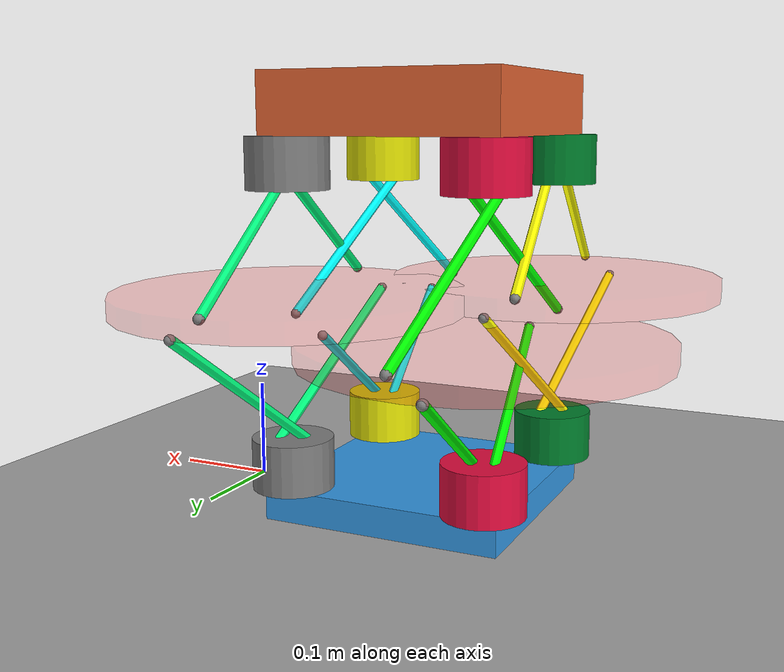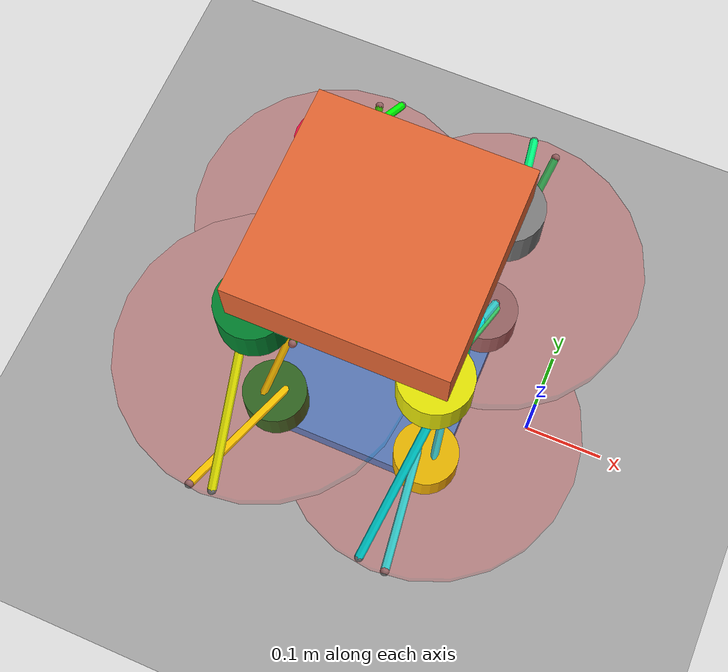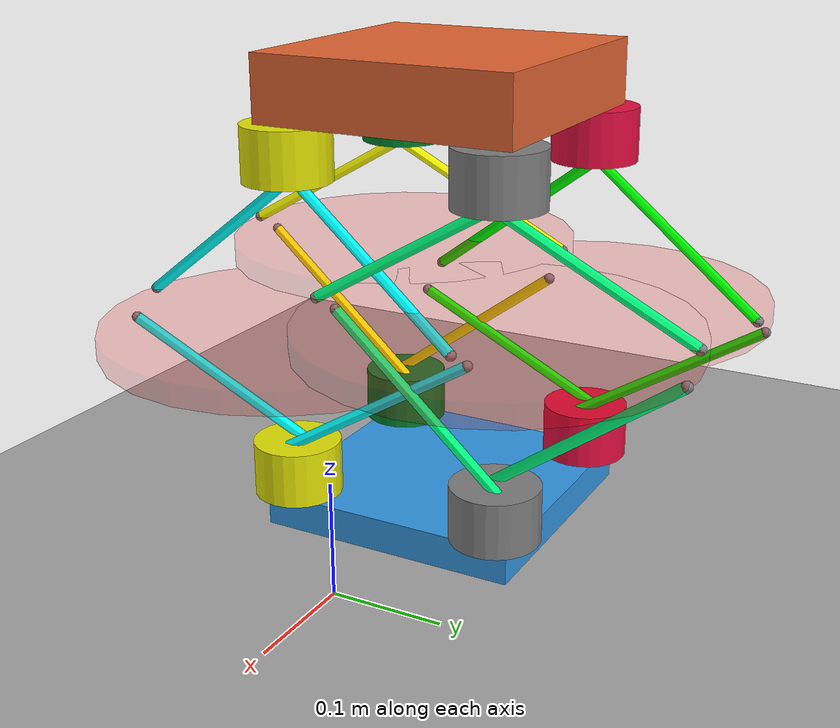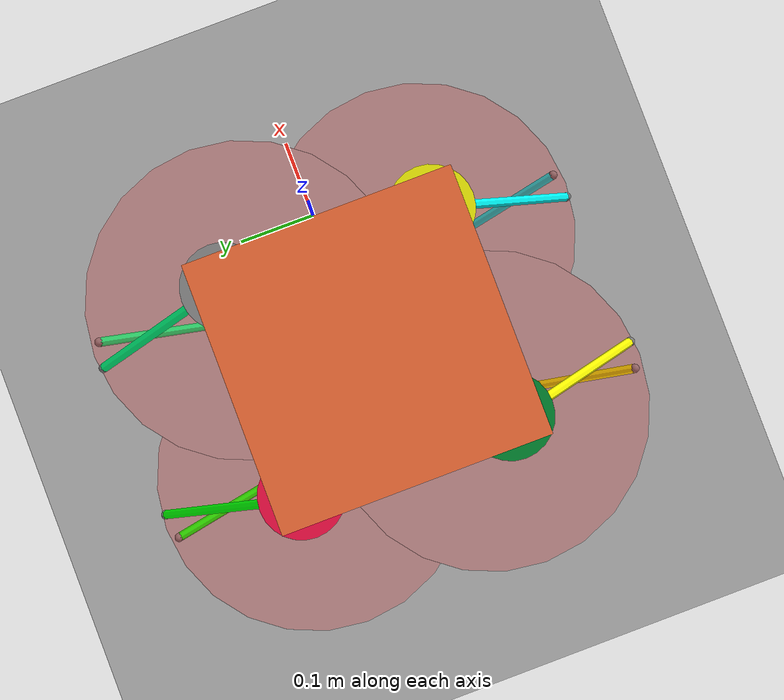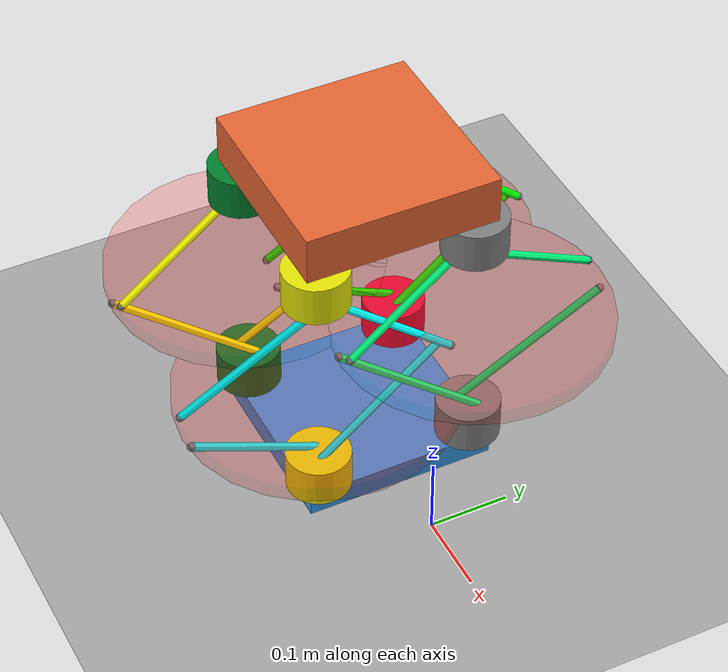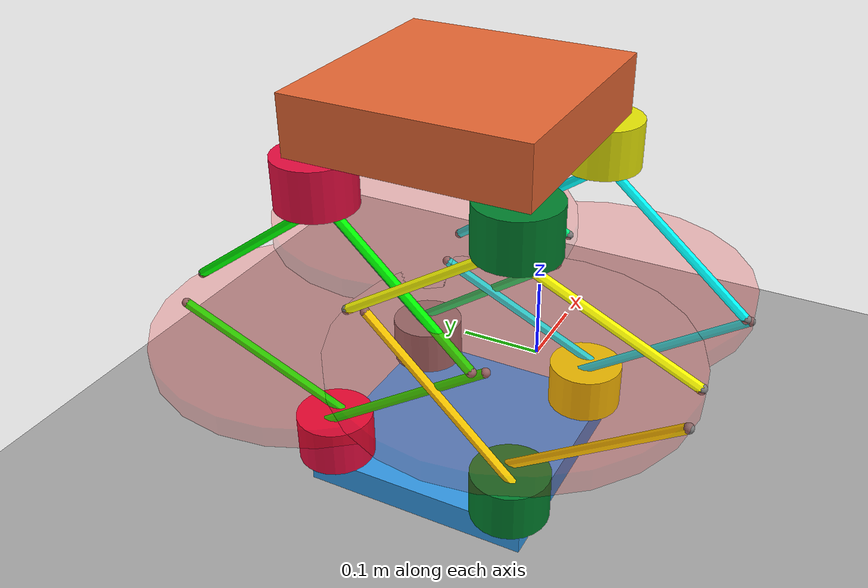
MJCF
<mujoco model="verticalOrientation">
    <compiler angle="radian" />
    <option timestep="0.001" actuatorgroupdisable="0 1 2" gravity="0 0 0"/>

    <asset>
        <texture name="grid" type="2d" builtin="checker" width="300" height="300"
             rgb1="0.8 0.8 0.8" rgb2="0.5 0.5 0.5" mark="edge" markrgb="0.2 0.2 0.2"/>
        <material name="gridmat" texture="grid" texrepeat="5 5" reflectance="0"/>
    </asset>

    <worldbody>
        <light name="light_front" pos="0 -5 0" dir="0 1 0" directional="true" diffuse=".5 .5 .5"/>
        <light name="light_back" pos="0 5 0" dir="0 -1 0" directional="true" diffuse=".5 .5 .5"/>
        <light name="light_right" pos="5 0 0" dir="-1 0 0" directional="true" diffuse=".5 .5 .5"/>
        <light name="light_left" pos="-5 0 0" dir="1 0 0" directional="true" diffuse=".5 .5 .5"/>

        <geom name="floor" type="plane" size="10 10 0.1" material="gridmat"/>
       <!-- Top Level Container -->

            <!-- Block A -->
            <body name="block_a" pos="-0.2 0 0" euler="0 -1.57 0">
                <inertial pos="0.04 0 0" mass="2.4" diaginertia="0.001 0.01 0.01"/>
                <geom type="box" size="0.03 0.12 0.12" mass="2.4" friction="0.2 0.02 0.01" rgba="0.2 0.6 0.9 1"/>

                <!-- Cylinder 1A -->
                <body name="cylinder1a" pos="0.03 0.10 0.10">
                    <inertial pos="0.035 0 0" mass="0.1" diaginertia="0.0001 0.0002 0.0002"/>
                    <joint name="cw_cont_1a_top" type="hinge" axis="1 0 0" limited="true" range="0 3.14"/>
                    <geom name="cylinder1a_con" type="cylinder" fromto="0 0 0 0.05 0 0" size="0.04" rgba="0.9 0.05 0.25 1" />

                    <site name="siteM1a1" pos="0.03 0.03 0.015"/>
                    <site name="siteM1a2" pos="0.03 -0.03 -0.015"/>
                </body>

                <!-- Disc 1B -->
                <body name="disc1b" pos="0.175 0.10 0.10">
                    <inertial pos="0.025 0 0" mass="0.1" diaginertia="0.0001 0.000225 0.000225"/>
                    <geom name="disc1b_con" type="cylinder" fromto="0 0 0 0.02 0 0" size="0.17"  rgba="1 0 0 0.1" contype="0" conaffinity="0"/>
                    <joint name="disc1b_hinge" type="hinge" axis="1 0 0"/>
                    <joint name="disc1b_slidez" type="slide" axis="0 0 1"/>
                    <joint name="disc1b_slidey" type="slide" axis="0 1 0"/>
                    <site name="siteM1b1" pos="0 -0.165 -0.015"/>
                    <site name="siteM1b2" pos="0 0.165 0.015"/>

                    <site name="siteM1b3" pos="0.02 -0.165 0.015"/>
                    <site name="siteM1b4" pos="0.02 0.165 -0.015"/>
                </body>

                <!-- Cylinder 2C-->
                <body name="cylinder2c" pos="0.03 -0.10 0.10">
                    <inertial pos="0.035 0 0" mass="0.1" diaginertia="0.0001 0.0002 0.0002"/>
                    <joint name="cw_ext_2c_top" type="hinge" axis="1 0 0"/>
                    <geom name="cylinder2c_con" type="cylinder" fromto="0 0 0 0.05 0 0" size="0.04" rgba="0.0 0.5 0.175 1"/>

                    <site name="siteM2c1" pos="0.03 0.03 -0.015"/>
                    <site name="siteM2c2" pos="0.03 -0.03 0.015"/>
                </body>

                <!-- Cylinder 3A -->
                <body name="cylinder3a" pos="0.03 -0.10 -0.10">
                    <inertial pos="0.035 0 0" mass="0.1" diaginertia="0.0001 0.0002 0.0002"/>
                    <joint name="cw_cont_3a_btm" type="hinge" axis="1 0 0" limited="true" range="0 3.14"/>
                    <geom name="cylinder3a_con" type="cylinder" fromto="0 0 0 0.05 0 0" size="0.04" rgba="0.9 0.9 0.02 1"/>

                    <site name="siteM3a1" pos="0.03 0.03 0.015"/>
                    <site name="siteM3a2" pos="0.03 -0.03 -0.015"/>

                </body>

                <!-- Disc 3B-->
                <body name="disc3b" pos="0.175 -0.10 -0.10">
                    <inertial pos="0.025 0 0" mass="0.1" diaginertia="0.0001 0.000225 0.000225"/>
                    <geom name="disc3b_con" type="cylinder" fromto="0 0 0 0.02 0 0" size="0.17"  rgba="1 0 0 0.1" contype="0" conaffinity="0"/>
                    <joint name="disc3b_hinge" type="hinge" axis="1 0 0"/>
                    <joint name="disc3b_slidez" type="slide" axis="0 0 1"/>
                    <joint name="disc3b_slidey" type="slide" axis="0 1 0"/>
                    <site name="siteM3b1" pos="0.0 -0.165 -0.015"/>
                    <site name="siteM3b2" pos="0.0 0.165 0.015"/>

                    <site name="siteM3b3" pos="0.02 -0.165 0.015"/>
                    <site name="siteM3b4" pos="0.02 0.165 -0.015"/>
                </body>

                <!-- Cylinder 4C-->
                <body name="cylinder4c" pos="0.03 0.10 -0.10">
                    <inertial pos="0.035 0 0" mass="0.1" diaginertia="0.0001 0.0002 0.0002"/>
                    <joint name="cw_ext_4c_btm" type="hinge" axis="1 0 0"/>
                    <geom name="cylinder4c_con" type="cylinder" fromto="0 0 0 0.05 0 0" size="0.04" />
                    <site name="siteM4c1" pos="0.03 0.03 -0.015"/>
                    <site name="siteM4c2" pos="0.03 -0.03 0.015"/>
                </body>

            </body>

            <!-- Block B -->
            <body name="block_b" pos="-0.2 0 0.4" euler="0 -1.57 0">
                <freejoint/>
                <inertial pos="-0.04 0 0" mass="2.4" diaginertia="0.001 0.01 0.01"/>
                <geom type="box" size="0.03 0.12 0.12" mass="2.4" friction="0.2 0.02 0.01" rgba="0.9 0.4 0.2 1"/>

                <!-- Cylinder 1C -->
                <body name="cylinder1c" pos="-0.03 0.10 0.10">
                    <inertial pos="-0.035 0 0" mass="0.1" diaginertia="0.0001 0.0002 0.0002"/>
                    <joint name="cw_ext_1c_top" type="hinge" axis="1 0 0"/>
                    <geom name="cylinder1c_con" type="cylinder" fromto="0 0 0 -0.05 0 0" size="0.04" rgba="0.9 0.05 0.25 1"/>

                    <site name="siteM1c1" pos="-0.03 0.03 -0.015"/>
                    <site name="siteM1c2" pos="-0.03 -0.03 0.015"/>
                </body>

                <!-- Cylinder 3C-->
                <body name="cylinder3c" pos="-0.03 -0.10 -0.10">
                    <inertial pos="-0.035 0 0" mass="0.1" diaginertia="0.0001 0.0002 0.0002"/>
                    <joint name="cw_ext_3c_btm" type="hinge" axis="1 0 0"/>
                    <geom name="cylinder3c_con" type="cylinder" fromto="0 0 0 -0.05 0 0" size="0.04" rgba="0.9 0.9 0.02 1"/>

                    <site name="siteM3c1" pos="-0.03 0.03 -0.015"/>
                    <site name="siteM3c2" pos="-0.03 -0.03 0.015"/>
                </body>

                <!-- Cylinder 2A -->
                <body name="cylinder2a" pos="-0.03 -0.10 0.10">
                    <inertial pos="-0.035 0 0" mass="0.1" diaginertia="0.0001 0.0002 0.0002"/>
                    <joint name="cw_cont_2a_top" type="hinge" axis="1 0 0" limited="true" range="0 3.14"/>
                    <geom name="cylinder2a_con" type="cylinder" fromto="0 0 0 -0.05 0 0" size="0.04" rgba="0.0 0.5 0.175 1"/>

                    <site name="siteM2a1" pos="-0.03 0.03 0.015"/>
                    <site name="siteM2a2" pos="-0.03 -0.03 -0.015"/>
                </body>

                <!-- Disc 2B -->
                <body name="disc2b" pos="-0.175 -0.10 0.10">
                    <inertial pos="-0.025 0 0" mass="0.1" diaginertia="0.0001 0.000225 0.000225"/>
                    <geom name="disc2b_con" type="cylinder" fromto="0 0 0 -0.02 0 0" size="0.17"  rgba="1 0 0 0.1" contype="0" conaffinity="0"/>
                    <joint name="disc2b_hinge" type="hinge" axis="1 0 0"/>
                    <joint name="disc2b_slidez" type="slide" axis="0 0 1"/>
                    <joint name="disc2b_slidey" type="slide" axis="0 1 0"/>
                    <site name="siteM2b1" pos="0 -0.165 -0.015"/>
                    <site name="siteM2b2" pos="0 0.165 0.015"/>

                    <site name="siteM2b3" pos="-0.02 -0.165 0.015"/>
                    <site name="siteM2b4" pos="-0.02 0.165 -0.015"/>
                </body>

                <!-- Cylinder4A -->
                <body name="cylinder4a" pos="-0.03 0.10 -0.10">
                    <inertial pos="-0.035 0 0" mass="0.1" diaginertia="0.0001 0.0002 0.0002"/>
                    <joint name="cw_cont_4a_btm" type="hinge" axis="1 0 0" limited="true" range="0 3.14" />
                    <geom name="cylinder4a_con" type="cylinder" fromto="0 0 0 -0.05 0 0" size="0.04" />

                    <site name="siteM4a1" pos="-0.03 0.03 0.015"/>
                    <site name="siteM4a2" pos="-0.03 -0.03 -0.015"/>
                </body>

                <!-- Disc4B -->
                <body name="disc4b" pos="-0.175 0.10 -0.10">
                    <inertial pos="-0.025 0 0" mass="0.1" diaginertia="0.0001 0.000225 0.000225"/>
                    <geom name="disc4b_con" type="cylinder" fromto="0 0 0 -0.02 0 0" size="0.17"  rgba="1 0 0 0.1" contype="0" conaffinity="0"/>
                    <joint name="disc4b_hinge" type="hinge" axis="1 0 0"/>
                    <joint name="disc4b_slidez" type="slide" axis="0 0 1"/>
                    <joint name="disc4b_slidey" type="slide" axis="0 1 0"/>

                    <site name="siteM4b1" pos="0 -0.165 -0.015"/>
                    <site name="siteM4b2" pos="0 0.165 0.015"/>

                    <site name="siteM4b3" pos="-0.02 -0.165 0.015"/>
                    <site name="siteM4b4" pos="-0.02 0.165 -0.015"/>
                </body>

            </body>

    </worldbody>

    <equality>
        <joint name="lock_disc1b" joint1="disc1b_hinge" />
        <joint name="lock_disc2b" joint1="disc2b_hinge" />
        <joint name="lock_disc3b" joint1="disc3b_hinge" />
        <joint name="lock_disc4b" joint1="disc4b_hinge" />
    </equality>

    <contact>
        <!-- For friction, making the first 2 values different results in anisotropic tangential friction, last 2 results in anisotropic rolling friction -->
        <pair name="cylinder3a_ground" geom1="cylinder3a_con" geom2="floor" condim="3" friction="1 0.1 0.0005 0.001 0.0001"/>
        <pair name="cylinder3c_ground" geom1="cylinder3c_con" geom2="floor" condim="3" friction="1 0.1 0.0005 0.001 0.0001"/>
        <pair name="cylinder4a_ground" geom1="cylinder4a_con" geom2="floor" condim="3" friction="1 0.1 0.0005 0.001 0.0001"/>
        <pair name="cylinder4c_ground" geom1="cylinder4c_con" geom2="floor" condim="3" friction="1 0.1 0.0005 0.001 0.0001"/>
    </contact>

    <actuator>
        <motor name="spring1a_torque" group="0" joint="cw_cont_1a_top" gear="0.05" ctrlrange="-5 5"/>
        <motor name="spring2a_torque" group="0" joint="cw_cont_2a_top" gear="0.05" ctrlrange="-5 5"/>
        <motor name="spring3a_torque" group="0" joint="cw_cont_3a_btm" gear="0.05" ctrlrange="-5 5"/>
        <motor name="spring4a_torque" group="0" joint="cw_cont_4a_btm" gear="0.05" ctrlrange="-5 5"/>

        <motor name="spring1c_torque" group="0" joint="cw_ext_1c_top" gear="0.05" ctrlrange="-5 5"/>
        <motor name="spring2c_torque" group="0" joint="cw_ext_2c_top" gear="0.05" ctrlrange="-5 5"/>
        <motor name="spring3c_torque" group="0" joint="cw_ext_3c_btm" gear="0.05" ctrlrange="-5 5"/>
        <motor name="spring4c_torque" group="0" joint="cw_ext_4c_btm" gear="0.05" ctrlrange="-5 5"/>
    </actuator>
    <actuator>
        <position name="spring1a_motor" group="1" joint="cw_cont_1a_top" kp="1" ctrlrange="0 3.14"/>
        <position name="spring2a_motor" group="1" joint="cw_cont_2a_top" kp="1" ctrlrange="0 3.14"/>
        <position name="spring3a_motor" group="1" joint="cw_cont_3a_btm" kp="1" ctrlrange="0 3.14"/>
        <position name="spring4a_motor" group="1" joint="cw_cont_4a_btm" kp="1" ctrlrange="0 3.14"/>

        <position name="spring1c_motor" group="1" joint="cw_ext_1c_top" kp="1" ctrlrange="-3.14 0"/>
        <position name="spring2c_motor" group="1" joint="cw_ext_2c_top" kp="1" ctrlrange="-3.14 0"/>
        <position name="spring3c_motor" group="1" joint="cw_ext_3c_btm" kp="1" ctrlrange="-3.14 0"/>
        <position name="spring4c_motor" group="1" joint="cw_ext_4c_btm" kp="1" ctrlrange="-3.14 0"/>
    </actuator>
    <actuator>
        <velocity name="spring1a_vel" group="2" joint="cw_cont_1a_top" kv="0.1" ctrlrange="-6.28 6.28"/>
        <velocity name="spring2a_vel" group="2" joint="cw_cont_2a_top" kv="0.1" ctrlrange="-6.28 6.28"/>
        <velocity name="spring3a_vel" group="2" joint="cw_cont_3a_btm" kv="0.1" ctrlrange="-6.28 6.28"/>
        <velocity name="spring4a_vel" group="2" joint="cw_cont_4a_btm" kv="0.1" ctrlrange="-6.28 6.28"/>

        <velocity name="spring1c_vel" group="2" joint="cw_ext_1c_top" kv="0.1" ctrlrange="-6.28 6.28"/>
        <velocity name="spring2c_vel" group="2" joint="cw_ext_2c_top" kv="0.1" ctrlrange="-6.28 6.28"/>
        <velocity name="spring3c_vel" group="2" joint="cw_ext_3c_btm" kv="0.1" ctrlrange="-6.28 6.28"/>
        <velocity name="spring4c_vel" group="2" joint="cw_ext_4c_btm" kv="0.1" ctrlrange="-6.28 6.28"/>
    </actuator>

    <tendon>
        <spatial name="inter1a1" width="0.005" rgba="0 1 0 1" stiffness="3000" damping="15">
            <site site="siteM1a1"/>
            <site site="siteM1b1"/>
        </spatial>
        <spatial name="inter1a2" width="0.005" rgba="0 1 0 1" stiffness="3000" damping="15">
            <site site="siteM1a2"/>
            <site site="siteM1b2"/>
        </spatial>
        <spatial name="inter1b1" width="0.005" rgba="0 1 0 1" stiffness="3000" damping="15">
            <site site="siteM1b3"/>
            <site site="siteM1c1"/>
        </spatial>
            <spatial name="inter1b2" width="0.005" rgba="0 1 0 1" stiffness="3000" damping="15">
            <site site="siteM1b4"/>
            <site site="siteM1c2"/>
        </spatial>

        <spatial name="inter2a1" width="0.005" rgba="1 1 0 1" stiffness="3000" damping="15">
            <site site="siteM2a1"/>
            <site site="siteM2b1"/>
        </spatial>
        <spatial name="inter2a2" width="0.005" rgba="1 1 0 1" stiffness="3000" damping="15">
            <site site="siteM2a2"/>
            <site site="siteM2b2"/>
        </spatial>
        <spatial name="inter2b1" width="0.005" rgba="1 1 0 1" stiffness="3000" damping="15">
            <site site="siteM2b3"/>
            <site site="siteM2c1"/>
        </spatial>
        <spatial name="inter2b2" width="0.005" rgba="1 1 0 1" stiffness="3000" damping="15">
            <site site="siteM2b4"/>
            <site site="siteM2c2"/>
        </spatial>

        <spatial name="inter3a1" width="0.005" rgba="0 1 1 1" stiffness="3000" damping="15">
            <site site="siteM3a1"/>
            <site site="siteM3b1"/>
        </spatial>
        <spatial name="inter3a2" width="0.005" rgba="0 1 1 1" stiffness="3000" damping="15">
            <site site="siteM3a2"/>
            <site site="siteM3b2"/>
        </spatial>
        <spatial name="inter3b1" width="0.005" rgba="0 1 1 1" stiffness="3000" damping="15">
            <site site="siteM3b3"/>
            <site site="siteM3c1"/>
        </spatial>
        <spatial name="inter3b2" width="0.005" rgba="0 1 1 1" stiffness="3000" damping="15">
            <site site="siteM3b4"/>
            <site site="siteM3c2"/>
        </spatial>

        <spatial name="inter4a1" width="0.005" rgba="0 1 0.5 1" stiffness="3000" damping="15">
            <site site="siteM4a1"/>
            <site site="siteM4b1"/>
        </spatial>
        <spatial name="inter4a2" width="0.005" rgba="0 1 0.5 1" stiffness="3000" damping="15">
            <site site="siteM4a2"/>
            <site site="siteM4b2"/>
        </spatial>
        <spatial name="inter4b1" width="0.005" rgba="0 1 0.5 1" stiffness="3000" damping="15">
            <site site="siteM4b3"/>
            <site site="siteM4c1"/>
        </spatial>
        <spatial name="inter4b2" width="0.005" rgba="0 1 0.5 1" stiffness="3000" damping="15">
            <site site="siteM4b4"/>
            <site site="siteM4c2"/>
        </spatial>
    </tendon>
</mujoco>
